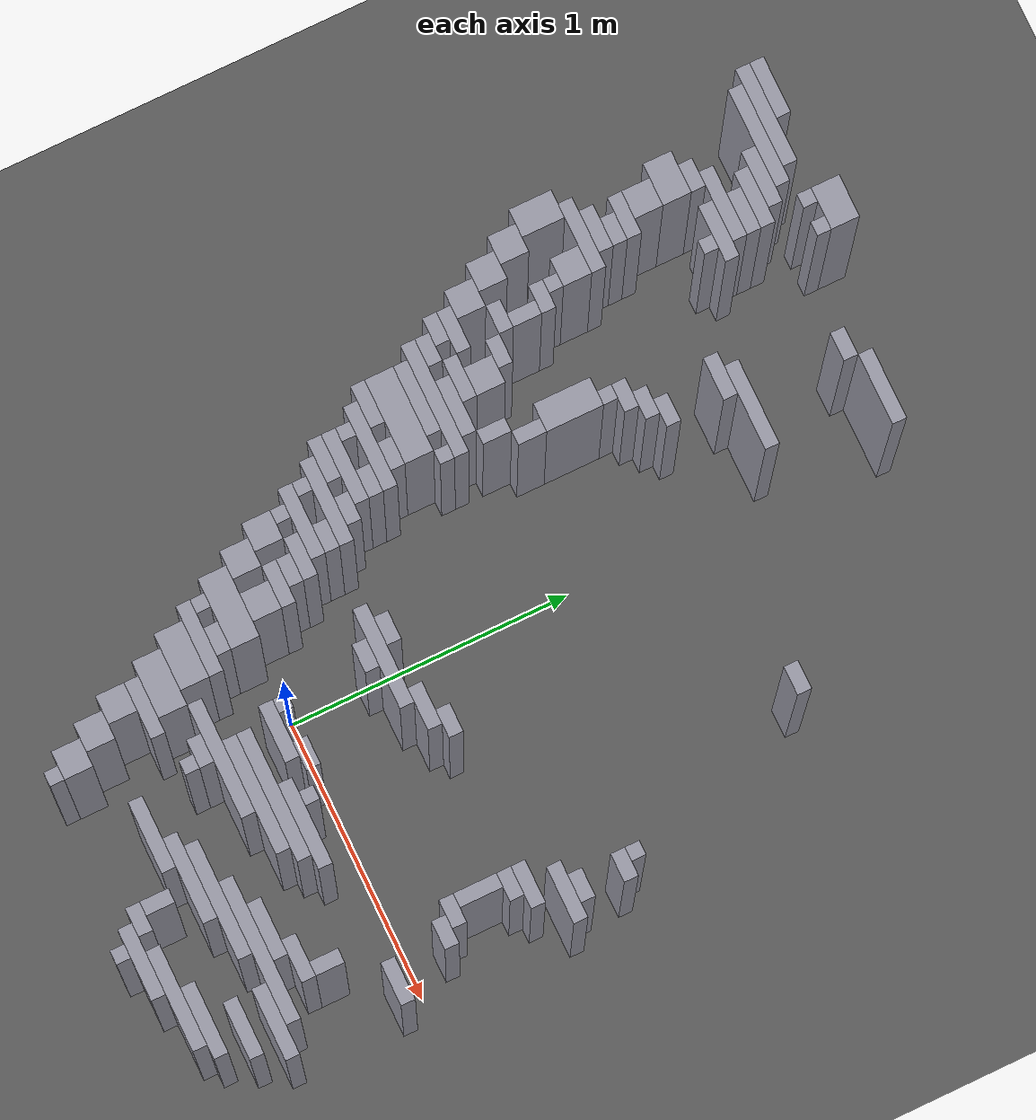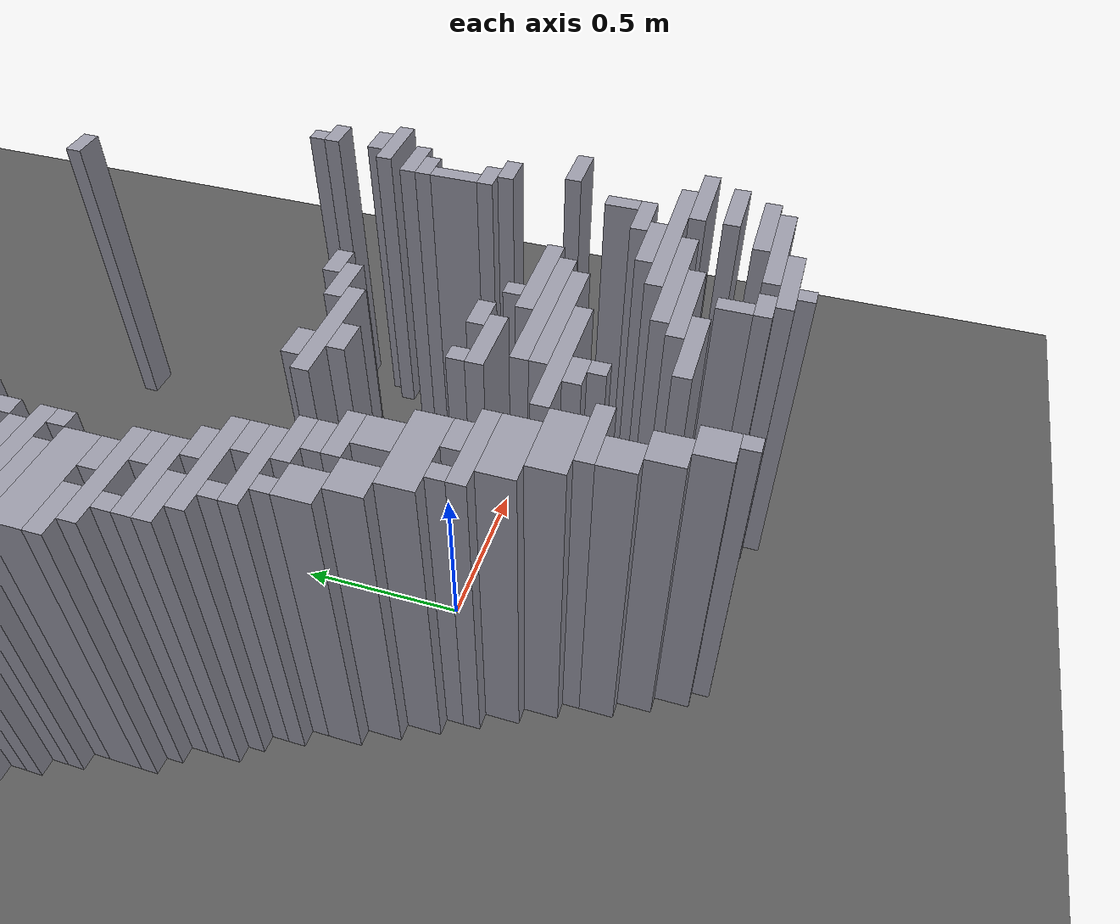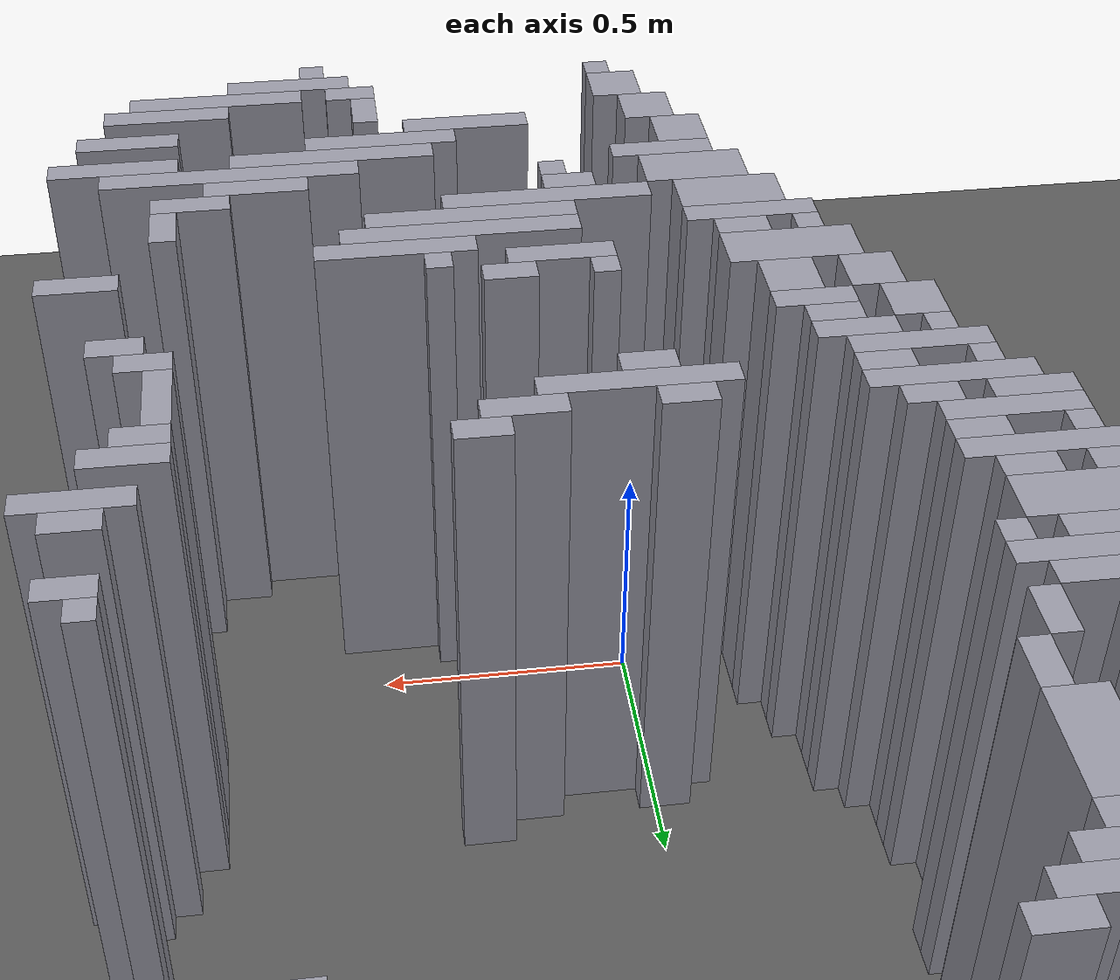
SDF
<sdf version="1.8">
 <world name="dimi">
  <model name="ground">
   <static>true</static>
   <link name="ground_link">
    <collision name="c"><geometry><plane><normal>0 0 1</normal><size>60 60</size></plane></geometry></collision>
    <visual name="v">
     <geometry><plane><normal>0 0 1</normal><size>60 60</size></plane></geometry>
     <material><ambient>0.3 0.3 0.3 1</ambient><diffuse>0.35 0.35 0.35 1</diffuse></material>
    </visual>
   </link>
  </model>
  <model name="walls">
   <static>true</static>
   <link name="wall_1074">
    <pose>-0.6420 2.2450 0.5000 0 0 0</pose>
    <collision name="c"><geometry><box><size>0.1500 0.1000 1.0000</size></box></geometry></collision>
    <visual name="v">
     <geometry><box><size>0.1500 0.1000 1.0000</size></box></geometry>
     <material><ambient>0.5 0.5 0.55 1</ambient><diffuse>0.6 0.6 0.65 1</diffuse></material>
    </visual>
   </link>
   <link name="wall_1080">
    <pose>-1.0670 2.2200 0.5000 0 0 0</pose>
    <collision name="c"><geometry><box><size>0.2000 0.0500 1.0000</size></box></geometry></collision>
    <visual name="v">
     <geometry><box><size>0.2000 0.0500 1.0000</size></box></geometry>
     <material><ambient>0.5 0.5 0.55 1</ambient><diffuse>0.6 0.6 0.65 1</diffuse></material>
    </visual>
   </link>
   <link name="wall_1085">
    <pose>-0.9920 2.1700 0.5000 0 0 0</pose>
    <collision name="c"><geometry><box><size>0.3500 0.0500 1.0000</size></box></geometry></collision>
    <visual name="v">
     <geometry><box><size>0.3500 0.0500 1.0000</size></box></geometry>
     <material><ambient>0.5 0.5 0.55 1</ambient><diffuse>0.6 0.6 0.65 1</diffuse></material>
    </visual>
   </link>
   <link name="wall_1086">
    <pose>-0.6920 2.1700 0.5000 0 0 0</pose>
    <collision name="c"><geometry><box><size>0.0500 0.0500 1.0000</size></box></geometry></collision>
    <visual name="v">
     <geometry><box><size>0.0500 0.0500 1.0000</size></box></geometry>
     <material><ambient>0.5 0.5 0.55 1</ambient><diffuse>0.6 0.6 0.65 1</diffuse></material>
    </visual>
   </link>
   <link name="wall_1087">
    <pose>-0.5920 2.1700 0.5000 0 0 0</pose>
    <collision name="c"><geometry><box><size>0.0500 0.0500 1.0000</size></box></geometry></collision>
    <visual name="v">
     <geometry><box><size>0.0500 0.0500 1.0000</size></box></geometry>
     <material><ambient>0.5 0.5 0.55 1</ambient><diffuse>0.6 0.6 0.65 1</diffuse></material>
    </visual>
   </link>
   <link name="wall_1092">
    <pose>-0.9420 2.1200 0.5000 0 0 0</pose>
    <collision name="c"><geometry><box><size>0.3500 0.0500 1.0000</size></box></geometry></collision>
    <visual name="v">
     <geometry><box><size>0.3500 0.0500 1.0000</size></box></geometry>
     <material><ambient>0.5 0.5 0.55 1</ambient><diffuse>0.6 0.6 0.65 1</diffuse></material>
    </visual>
   </link>
   <link name="wall_1093">
    <pose>-0.0420 2.1200 0.5000 0 0 0</pose>
    <collision name="c"><geometry><box><size>0.2500 0.0500 1.0000</size></box></geometry></collision>
    <visual name="v">
     <geometry><box><size>0.2500 0.0500 1.0000</size></box></geometry>
     <material><ambient>0.5 0.5 0.55 1</ambient><diffuse>0.6 0.6 0.65 1</diffuse></material>
    </visual>
   </link>
   <link name="wall_1097">
    <pose>-0.8170 2.0700 0.5000 0 0 0</pose>
    <collision name="c"><geometry><box><size>0.2000 0.0500 1.0000</size></box></geometry></collision>
    <visual name="v">
     <geometry><box><size>0.2000 0.0500 1.0000</size></box></geometry>
     <material><ambient>0.5 0.5 0.55 1</ambient><diffuse>0.6 0.6 0.65 1</diffuse></material>
    </visual>
   </link>
   <link name="wall_1098">
    <pose>-0.2170 2.0700 0.5000 0 0 0</pose>
    <collision name="c"><geometry><box><size>0.1000 0.0500 1.0000</size></box></geometry></collision>
    <visual name="v">
     <geometry><box><size>0.1000 0.0500 1.0000</size></box></geometry>
     <material><ambient>0.5 0.5 0.55 1</ambient><diffuse>0.6 0.6 0.65 1</diffuse></material>
    </visual>
   </link>
   <link name="wall_1102">
    <pose>-0.7670 2.0200 0.5000 0 0 0</pose>
    <collision name="c"><geometry><box><size>0.2000 0.0500 1.0000</size></box></geometry></collision>
    <visual name="v">
     <geometry><box><size>0.2000 0.0500 1.0000</size></box></geometry>
     <material><ambient>0.5 0.5 0.55 1</ambient><diffuse>0.6 0.6 0.65 1</diffuse></material>
    </visual>
   </link>
   <link name="wall_1105">
    <pose>-0.7420 1.9700 0.5000 0 0 0</pose>
    <collision name="c"><geometry><box><size>0.1500 0.0500 1.0000</size></box></geometry></collision>
    <visual name="v">
     <geometry><box><size>0.1500 0.0500 1.0000</size></box></geometry>
     <material><ambient>0.5 0.5 0.55 1</ambient><diffuse>0.6 0.6 0.65 1</diffuse></material>
    </visual>
   </link>
   <link name="wall_1110">
    <pose>-0.7920 1.9200 0.5000 0 0 0</pose>
    <collision name="c"><geometry><box><size>0.2500 0.0500 1.0000</size></box></geometry></collision>
    <visual name="v">
     <geometry><box><size>0.2500 0.0500 1.0000</size></box></geometry>
     <material><ambient>0.5 0.5 0.55 1</ambient><diffuse>0.6 0.6 0.65 1</diffuse></material>
    </visual>
   </link>
   <link name="wall_1113">
    <pose>-0.9170 1.8700 0.5000 0 0 0</pose>
    <collision name="c"><geometry><box><size>0.1000 0.0500 1.0000</size></box></geometry></collision>
    <visual name="v">
     <geometry><box><size>0.1000 0.0500 1.0000</size></box></geometry>
     <material><ambient>0.5 0.5 0.55 1</ambient><diffuse>0.6 0.6 0.65 1</diffuse></material>
    </visual>
   </link>
   <link name="wall_1114">
    <pose>-0.7170 1.8700 0.5000 0 0 0</pose>
    <collision name="c"><geometry><box><size>0.2000 0.0500 1.0000</size></box></geometry></collision>
    <visual name="v">
     <geometry><box><size>0.2000 0.0500 1.0000</size></box></geometry>
     <material><ambient>0.5 0.5 0.55 1</ambient><diffuse>0.6 0.6 0.65 1</diffuse></material>
    </visual>
   </link>
   <link name="wall_1119">
    <pose>-0.9420 1.7950 0.5000 0 0 0</pose>
    <collision name="c"><geometry><box><size>0.1500 0.1000 1.0000</size></box></geometry></collision>
    <visual name="v">
     <geometry><box><size>0.1500 0.1000 1.0000</size></box></geometry>
     <material><ambient>0.5 0.5 0.55 1</ambient><diffuse>0.6 0.6 0.65 1</diffuse></material>
    </visual>
   </link>
   <link name="wall_1120">
    <pose>-0.6920 1.8200 0.5000 0 0 0</pose>
    <collision name="c"><geometry><box><size>0.0500 0.0500 1.0000</size></box></geometry></collision>
    <visual name="v">
     <geometry><box><size>0.0500 0.0500 1.0000</size></box></geometry>
     <material><ambient>0.5 0.5 0.55 1</ambient><diffuse>0.6 0.6 0.65 1</diffuse></material>
    </visual>
   </link>
   <link name="wall_1127">
    <pose>-0.9170 1.6950 0.5000 0 0 0</pose>
    <collision name="c"><geometry><box><size>0.1000 0.1000 1.0000</size></box></geometry></collision>
    <visual name="v">
     <geometry><box><size>0.1000 0.1000 1.0000</size></box></geometry>
     <material><ambient>0.5 0.5 0.55 1</ambient><diffuse>0.6 0.6 0.65 1</diffuse></material>
    </visual>
   </link>
   <link name="wall_1128">
    <pose>-0.1670 1.7200 0.5000 0 0 0</pose>
    <collision name="c"><geometry><box><size>0.3000 0.0500 1.0000</size></box></geometry></collision>
    <visual name="v">
     <geometry><box><size>0.3000 0.0500 1.0000</size></box></geometry>
     <material><ambient>0.5 0.5 0.55 1</ambient><diffuse>0.6 0.6 0.65 1</diffuse></material>
    </visual>
   </link>
   <link name="wall_1134">
    <pose>-0.2920 1.6700 0.5000 0 0 0</pose>
    <collision name="c"><geometry><box><size>0.1500 0.0500 1.0000</size></box></geometry></collision>
    <visual name="v">
     <geometry><box><size>0.1500 0.0500 1.0000</size></box></geometry>
     <material><ambient>0.5 0.5 0.55 1</ambient><diffuse>0.6 0.6 0.65 1</diffuse></material>
    </visual>
   </link>
   <link name="wall_1138">
    <pose>-0.8920 1.6200 0.5000 0 0 0</pose>
    <collision name="c"><geometry><box><size>0.1500 0.0500 1.0000</size></box></geometry></collision>
    <visual name="v">
     <geometry><box><size>0.1500 0.0500 1.0000</size></box></geometry>
     <material><ambient>0.5 0.5 0.55 1</ambient><diffuse>0.6 0.6 0.65 1</diffuse></material>
    </visual>
   </link>
   <link name="wall_1143">
    <pose>-0.8670 1.5700 0.5000 0 0 0</pose>
    <collision name="c"><geometry><box><size>0.1000 0.0500 1.0000</size></box></geometry></collision>
    <visual name="v">
     <geometry><box><size>0.1000 0.0500 1.0000</size></box></geometry>
     <material><ambient>0.5 0.5 0.55 1</ambient><diffuse>0.6 0.6 0.65 1</diffuse></material>
    </visual>
   </link>
   <link name="wall_1146">
    <pose>-0.8920 1.5200 0.5000 0 0 0</pose>
    <collision name="c"><geometry><box><size>0.1500 0.0500 1.0000</size></box></geometry></collision>
    <visual name="v">
     <geometry><box><size>0.1500 0.0500 1.0000</size></box></geometry>
     <material><ambient>0.5 0.5 0.55 1</ambient><diffuse>0.6 0.6 0.65 1</diffuse></material>
    </visual>
   </link>
   <link name="wall_1150">
    <pose>-0.8920 1.4700 0.5000 0 0 0</pose>
    <collision name="c"><geometry><box><size>0.2500 0.0500 1.0000</size></box></geometry></collision>
    <visual name="v">
     <geometry><box><size>0.2500 0.0500 1.0000</size></box></geometry>
     <material><ambient>0.5 0.5 0.55 1</ambient><diffuse>0.6 0.6 0.65 1</diffuse></material>
    </visual>
   </link>
   <link name="wall_1151">
    <pose>-0.2670 1.4700 0.5000 0 0 0</pose>
    <collision name="c"><geometry><box><size>0.1000 0.0500 1.0000</size></box></geometry></collision>
    <visual name="v">
     <geometry><box><size>0.1000 0.0500 1.0000</size></box></geometry>
     <material><ambient>0.5 0.5 0.55 1</ambient><diffuse>0.6 0.6 0.65 1</diffuse></material>
    </visual>
   </link>
   <link name="wall_1152">
    <pose>0.6830 1.4700 0.5000 0 0 0</pose>
    <collision name="c"><geometry><box><size>0.1000 0.0500 1.0000</size></box></geometry></collision>
    <visual name="v">
     <geometry><box><size>0.1000 0.0500 1.0000</size></box></geometry>
     <material><ambient>0.5 0.5 0.55 1</ambient><diffuse>0.6 0.6 0.65 1</diffuse></material>
    </visual>
   </link>
   <link name="wall_1155">
    <pose>-1.0170 1.3700 0.5000 0 0 0</pose>
    <collision name="c"><geometry><box><size>0.1000 0.1500 1.0000</size></box></geometry></collision>
    <visual name="v">
     <geometry><box><size>0.1000 0.1500 1.0000</size></box></geometry>
     <material><ambient>0.5 0.5 0.55 1</ambient><diffuse>0.6 0.6 0.65 1</diffuse></material>
    </visual>
   </link>
   <link name="wall_1156">
    <pose>-0.8170 1.3950 0.5000 0 0 0</pose>
    <collision name="c"><geometry><box><size>0.1000 0.1000 1.0000</size></box></geometry></collision>
    <visual name="v">
     <geometry><box><size>0.1000 0.1000 1.0000</size></box></geometry>
     <material><ambient>0.5 0.5 0.55 1</ambient><diffuse>0.6 0.6 0.65 1</diffuse></material>
    </visual>
   </link>
   <link name="wall_1157">
    <pose>-0.3170 1.4200 0.5000 0 0 0</pose>
    <collision name="c"><geometry><box><size>0.1000 0.0500 1.0000</size></box></geometry></collision>
    <visual name="v">
     <geometry><box><size>0.1000 0.0500 1.0000</size></box></geometry>
     <material><ambient>0.5 0.5 0.55 1</ambient><diffuse>0.6 0.6 0.65 1</diffuse></material>
    </visual>
   </link>
   <link name="wall_1159">
    <pose>-0.3670 1.3700 0.5000 0 0 0</pose>
    <collision name="c"><geometry><box><size>0.1000 0.0500 1.0000</size></box></geometry></collision>
    <visual name="v">
     <geometry><box><size>0.1000 0.0500 1.0000</size></box></geometry>
     <material><ambient>0.5 0.5 0.55 1</ambient><diffuse>0.6 0.6 0.65 1</diffuse></material>
    </visual>
   </link>
   <link name="wall_1161">
    <pose>-0.7920 1.3200 0.5000 0 0 0</pose>
    <collision name="c"><geometry><box><size>0.0500 0.0500 1.0000</size></box></geometry></collision>
    <visual name="v">
     <geometry><box><size>0.0500 0.0500 1.0000</size></box></geometry>
     <material><ambient>0.5 0.5 0.55 1</ambient><diffuse>0.6 0.6 0.65 1</diffuse></material>
    </visual>
   </link>
   <link name="wall_1162">
    <pose>-0.3920 1.3200 0.5000 0 0 0</pose>
    <collision name="c"><geometry><box><size>0.0500 0.0500 1.0000</size></box></geometry></collision>
    <visual name="v">
     <geometry><box><size>0.0500 0.0500 1.0000</size></box></geometry>
     <material><ambient>0.5 0.5 0.55 1</ambient><diffuse>0.6 0.6 0.65 1</diffuse></material>
    </visual>
   </link>
   <link name="wall_1166">
    <pose>-0.9670 1.2450 0.5000 0 0 0</pose>
    <collision name="c"><geometry><box><size>0.1000 0.1000 1.0000</size></box></geometry></collision>
    <visual name="v">
     <geometry><box><size>0.1000 0.1000 1.0000</size></box></geometry>
     <material><ambient>0.5 0.5 0.55 1</ambient><diffuse>0.6 0.6 0.65 1</diffuse></material>
    </visual>
   </link>
   <link name="wall_1167">
    <pose>-0.7670 1.2700 0.5000 0 0 0</pose>
    <collision name="c"><geometry><box><size>0.1000 0.0500 1.0000</size></box></geometry></collision>
    <visual name="v">
     <geometry><box><size>0.1000 0.0500 1.0000</size></box></geometry>
     <material><ambient>0.5 0.5 0.55 1</ambient><diffuse>0.6 0.6 0.65 1</diffuse></material>
    </visual>
   </link>
   <link name="wall_1168">
    <pose>-0.4170 1.1950 0.5000 0 0 0</pose>
    <collision name="c"><geometry><box><size>0.1000 0.2000 1.0000</size></box></geometry></collision>
    <visual name="v">
     <geometry><box><size>0.1000 0.2000 1.0000</size></box></geometry>
     <material><ambient>0.5 0.5 0.55 1</ambient><diffuse>0.6 0.6 0.65 1</diffuse></material>
    </visual>
   </link>
   <link name="wall_1171">
    <pose>-0.7420 1.1950 0.5000 0 0 0</pose>
    <collision name="c"><geometry><box><size>0.0500 0.1000 1.0000</size></box></geometry></collision>
    <visual name="v">
     <geometry><box><size>0.0500 0.1000 1.0000</size></box></geometry>
     <material><ambient>0.5 0.5 0.55 1</ambient><diffuse>0.6 0.6 0.65 1</diffuse></material>
    </visual>
   </link>
   <link name="wall_1174">
    <pose>-0.9170 1.1450 0.5000 0 0 0</pose>
    <collision name="c"><geometry><box><size>0.1000 0.1000 1.0000</size></box></geometry></collision>
    <visual name="v">
     <geometry><box><size>0.1000 0.1000 1.0000</size></box></geometry>
     <material><ambient>0.5 0.5 0.55 1</ambient><diffuse>0.6 0.6 0.65 1</diffuse></material>
    </visual>
   </link>
   <link name="wall_1176">
    <pose>-0.7670 1.1200 0.5000 0 0 0</pose>
    <collision name="c"><geometry><box><size>0.1000 0.0500 1.0000</size></box></geometry></collision>
    <visual name="v">
     <geometry><box><size>0.1000 0.0500 1.0000</size></box></geometry>
     <material><ambient>0.5 0.5 0.55 1</ambient><diffuse>0.6 0.6 0.65 1</diffuse></material>
    </visual>
   </link>
   <link name="wall_1179">
    <pose>-0.8670 1.0450 0.5000 0 0 0</pose>
    <collision name="c"><geometry><box><size>0.1000 0.1000 1.0000</size></box></geometry></collision>
    <visual name="v">
     <geometry><box><size>0.1000 0.1000 1.0000</size></box></geometry>
     <material><ambient>0.5 0.5 0.55 1</ambient><diffuse>0.6 0.6 0.65 1</diffuse></material>
    </visual>
   </link>
   <link name="wall_1180">
    <pose>-0.6670 1.0700 0.5000 0 0 0</pose>
    <collision name="c"><geometry><box><size>0.1000 0.0500 1.0000</size></box></geometry></collision>
    <visual name="v">
     <geometry><box><size>0.1000 0.0500 1.0000</size></box></geometry>
     <material><ambient>0.5 0.5 0.55 1</ambient><diffuse>0.6 0.6 0.65 1</diffuse></material>
    </visual>
   </link>
   <link name="wall_1181">
    <pose>-0.3920 1.0450 0.5000 0 0 0</pose>
    <collision name="c"><geometry><box><size>0.0500 0.1000 1.0000</size></box></geometry></collision>
    <visual name="v">
     <geometry><box><size>0.0500 0.1000 1.0000</size></box></geometry>
     <material><ambient>0.5 0.5 0.55 1</ambient><diffuse>0.6 0.6 0.65 1</diffuse></material>
    </visual>
   </link>
   <link name="wall_1185">
    <pose>-0.6170 0.9950 0.5000 0 0 0</pose>
    <collision name="c"><geometry><box><size>0.1000 0.1000 1.0000</size></box></geometry></collision>
    <visual name="v">
     <geometry><box><size>0.1000 0.1000 1.0000</size></box></geometry>
     <material><ambient>0.5 0.5 0.55 1</ambient><diffuse>0.6 0.6 0.65 1</diffuse></material>
    </visual>
   </link>
   <link name="wall_1188">
    <pose>-0.7920 0.9700 0.5000 0 0 0</pose>
    <collision name="c"><geometry><box><size>0.1500 0.0500 1.0000</size></box></geometry></collision>
    <visual name="v">
     <geometry><box><size>0.1500 0.0500 1.0000</size></box></geometry>
     <material><ambient>0.5 0.5 0.55 1</ambient><diffuse>0.6 0.6 0.65 1</diffuse></material>
    </visual>
   </link>
   <link name="wall_1189">
    <pose>-0.4420 0.9450 0.5000 0 0 0</pose>
    <collision name="c"><geometry><box><size>0.0500 0.1000 1.0000</size></box></geometry></collision>
    <visual name="v">
     <geometry><box><size>0.0500 0.1000 1.0000</size></box></geometry>
     <material><ambient>0.5 0.5 0.55 1</ambient><diffuse>0.6 0.6 0.65 1</diffuse></material>
    </visual>
   </link>
   <link name="wall_1193">
    <pose>-0.8170 0.9200 0.5000 0 0 0</pose>
    <collision name="c"><geometry><box><size>0.1000 0.0500 1.0000</size></box></geometry></collision>
    <visual name="v">
     <geometry><box><size>0.1000 0.0500 1.0000</size></box></geometry>
     <material><ambient>0.5 0.5 0.55 1</ambient><diffuse>0.6 0.6 0.65 1</diffuse></material>
    </visual>
   </link>
   <link name="wall_1194">
    <pose>-0.6420 0.9200 0.5000 0 0 0</pose>
    <collision name="c"><geometry><box><size>0.1500 0.0500 1.0000</size></box></geometry></collision>
    <visual name="v">
     <geometry><box><size>0.1500 0.0500 1.0000</size></box></geometry>
     <material><ambient>0.5 0.5 0.55 1</ambient><diffuse>0.6 0.6 0.65 1</diffuse></material>
    </visual>
   </link>
   <link name="wall_1198">
    <pose>-0.7670 0.8700 0.5000 0 0 0</pose>
    <collision name="c"><geometry><box><size>0.1000 0.0500 1.0000</size></box></geometry></collision>
    <visual name="v">
     <geometry><box><size>0.1000 0.0500 1.0000</size></box></geometry>
     <material><ambient>0.5 0.5 0.55 1</ambient><diffuse>0.6 0.6 0.65 1</diffuse></material>
    </visual>
   </link>
   <link name="wall_1199">
    <pose>-0.5670 0.8700 0.5000 0 0 0</pose>
    <collision name="c"><geometry><box><size>0.2000 0.0500 1.0000</size></box></geometry></collision>
    <visual name="v">
     <geometry><box><size>0.2000 0.0500 1.0000</size></box></geometry>
     <material><ambient>0.5 0.5 0.55 1</ambient><diffuse>0.6 0.6 0.65 1</diffuse></material>
    </visual>
   </link>
   <link name="wall_1203">
    <pose>-0.6170 0.8200 0.5000 0 0 0</pose>
    <collision name="c"><geometry><box><size>0.4000 0.0500 1.0000</size></box></geometry></collision>
    <visual name="v">
     <geometry><box><size>0.4000 0.0500 1.0000</size></box></geometry>
     <material><ambient>0.5 0.5 0.55 1</ambient><diffuse>0.6 0.6 0.65 1</diffuse></material>
    </visual>
   </link>
   <link name="wall_1207">
    <pose>-0.6420 0.7700 0.5000 0 0 0</pose>
    <collision name="c"><geometry><box><size>0.2500 0.0500 1.0000</size></box></geometry></collision>
    <visual name="v">
     <geometry><box><size>0.2500 0.0500 1.0000</size></box></geometry>
     <material><ambient>0.5 0.5 0.55 1</ambient><diffuse>0.6 0.6 0.65 1</diffuse></material>
    </visual>
   </link>
   <link name="wall_1208">
    <pose>-0.4420 0.7700 0.5000 0 0 0</pose>
    <collision name="c"><geometry><box><size>0.0500 0.0500 1.0000</size></box></geometry></collision>
    <visual name="v">
     <geometry><box><size>0.0500 0.0500 1.0000</size></box></geometry>
     <material><ambient>0.5 0.5 0.55 1</ambient><diffuse>0.6 0.6 0.65 1</diffuse></material>
    </visual>
   </link>
   <link name="wall_1209">
    <pose>0.9580 0.7700 0.5000 0 0 0</pose>
    <collision name="c"><geometry><box><size>0.0500 0.0500 1.0000</size></box></geometry></collision>
    <visual name="v">
     <geometry><box><size>0.0500 0.0500 1.0000</size></box></geometry>
     <material><ambient>0.5 0.5 0.55 1</ambient><diffuse>0.6 0.6 0.65 1</diffuse></material>
    </visual>
   </link>
   <link name="wall_1213">
    <pose>-0.6170 0.6950 0.5000 0 0 0</pose>
    <collision name="c"><geometry><box><size>0.3000 0.1000 1.0000</size></box></geometry></collision>
    <visual name="v">
     <geometry><box><size>0.3000 0.1000 1.0000</size></box></geometry>
     <material><ambient>0.5 0.5 0.55 1</ambient><diffuse>0.6 0.6 0.65 1</diffuse></material>
    </visual>
   </link>
   <link name="wall_1214">
    <pose>0.9830 0.7200 0.5000 0 0 0</pose>
    <collision name="c"><geometry><box><size>0.1000 0.0500 1.0000</size></box></geometry></collision>
    <visual name="v">
     <geometry><box><size>0.1000 0.0500 1.0000</size></box></geometry>
     <material><ambient>0.5 0.5 0.55 1</ambient><diffuse>0.6 0.6 0.65 1</diffuse></material>
    </visual>
   </link>
   <link name="wall_1217">
    <pose>-0.6920 0.6200 0.5000 0 0 0</pose>
    <collision name="c"><geometry><box><size>0.1500 0.0500 1.0000</size></box></geometry></collision>
    <visual name="v">
     <geometry><box><size>0.1500 0.0500 1.0000</size></box></geometry>
     <material><ambient>0.5 0.5 0.55 1</ambient><diffuse>0.6 0.6 0.65 1</diffuse></material>
    </visual>
   </link>
   <link name="wall_1218">
    <pose>-0.5170 0.6200 0.5000 0 0 0</pose>
    <collision name="c"><geometry><box><size>0.1000 0.0500 1.0000</size></box></geometry></collision>
    <visual name="v">
     <geometry><box><size>0.1000 0.0500 1.0000</size></box></geometry>
     <material><ambient>0.5 0.5 0.55 1</ambient><diffuse>0.6 0.6 0.65 1</diffuse></material>
    </visual>
   </link>
   <link name="wall_1221">
    <pose>-0.5670 0.5700 0.5000 0 0 0</pose>
    <collision name="c"><geometry><box><size>0.3000 0.0500 1.0000</size></box></geometry></collision>
    <visual name="v">
     <geometry><box><size>0.3000 0.0500 1.0000</size></box></geometry>
     <material><ambient>0.5 0.5 0.55 1</ambient><diffuse>0.6 0.6 0.65 1</diffuse></material>
    </visual>
   </link>
   <link name="wall_1222">
    <pose>0.9830 0.5700 0.5000 0 0 0</pose>
    <collision name="c"><geometry><box><size>0.1000 0.0500 1.0000</size></box></geometry></collision>
    <visual name="v">
     <geometry><box><size>0.1000 0.0500 1.0000</size></box></geometry>
     <material><ambient>0.5 0.5 0.55 1</ambient><diffuse>0.6 0.6 0.65 1</diffuse></material>
    </visual>
   </link>
   <link name="wall_1225">
    <pose>-0.6420 0.5200 0.5000 0 0 0</pose>
    <collision name="c"><geometry><box><size>0.0500 0.0500 1.0000</size></box></geometry></collision>
    <visual name="v">
     <geometry><box><size>0.0500 0.0500 1.0000</size></box></geometry>
     <material><ambient>0.5 0.5 0.55 1</ambient><diffuse>0.6 0.6 0.65 1</diffuse></material>
    </visual>
   </link>
   <link name="wall_1226">
    <pose>-0.4670 0.5200 0.5000 0 0 0</pose>
    <collision name="c"><geometry><box><size>0.1000 0.0500 1.0000</size></box></geometry></collision>
    <visual name="v">
     <geometry><box><size>0.1000 0.0500 1.0000</size></box></geometry>
     <material><ambient>0.5 0.5 0.55 1</ambient><diffuse>0.6 0.6 0.65 1</diffuse></material>
    </visual>
   </link>
   <link name="wall_1227">
    <pose>0.9830 0.5200 0.5000 0 0 0</pose>
    <collision name="c"><geometry><box><size>0.2000 0.0500 1.0000</size></box></geometry></collision>
    <visual name="v">
     <geometry><box><size>0.2000 0.0500 1.0000</size></box></geometry>
     <material><ambient>0.5 0.5 0.55 1</ambient><diffuse>0.6 0.6 0.65 1</diffuse></material>
    </visual>
   </link>
   <link name="wall_1231">
    <pose>-0.5420 0.4700 0.5000 0 0 0</pose>
    <collision name="c"><geometry><box><size>0.2500 0.0500 1.0000</size></box></geometry></collision>
    <visual name="v">
     <geometry><box><size>0.2500 0.0500 1.0000</size></box></geometry>
     <material><ambient>0.5 0.5 0.55 1</ambient><diffuse>0.6 0.6 0.65 1</diffuse></material>
    </visual>
   </link>
   <link name="wall_1235">
    <pose>-0.5920 0.4200 0.5000 0 0 0</pose>
    <collision name="c"><geometry><box><size>0.1500 0.0500 1.0000</size></box></geometry></collision>
    <visual name="v">
     <geometry><box><size>0.1500 0.0500 1.0000</size></box></geometry>
     <material><ambient>0.5 0.5 0.55 1</ambient><diffuse>0.6 0.6 0.65 1</diffuse></material>
    </visual>
   </link>
   <link name="wall_1236">
    <pose>-0.4170 0.4200 0.5000 0 0 0</pose>
    <collision name="c"><geometry><box><size>0.1000 0.0500 1.0000</size></box></geometry></collision>
    <visual name="v">
     <geometry><box><size>0.1000 0.0500 1.0000</size></box></geometry>
     <material><ambient>0.5 0.5 0.55 1</ambient><diffuse>0.6 0.6 0.65 1</diffuse></material>
    </visual>
   </link>
   <link name="wall_1237">
    <pose>0.3330 0.4200 0.5000 0 0 0</pose>
    <collision name="c"><geometry><box><size>0.1000 0.0500 1.0000</size></box></geometry></collision>
    <visual name="v">
     <geometry><box><size>0.1000 0.0500 1.0000</size></box></geometry>
     <material><ambient>0.5 0.5 0.55 1</ambient><diffuse>0.6 0.6 0.65 1</diffuse></material>
    </visual>
   </link>
   <link name="wall_1238">
    <pose>0.9080 0.4200 0.5000 0 0 0</pose>
    <collision name="c"><geometry><box><size>0.1500 0.0500 1.0000</size></box></geometry></collision>
    <visual name="v">
     <geometry><box><size>0.1500 0.0500 1.0000</size></box></geometry>
     <material><ambient>0.5 0.5 0.55 1</ambient><diffuse>0.6 0.6 0.65 1</diffuse></material>
    </visual>
   </link>
   <link name="wall_1244">
    <pose>-0.4670 0.3700 0.5000 0 0 0</pose>
    <collision name="c"><geometry><box><size>0.3000 0.0500 1.0000</size></box></geometry></collision>
    <visual name="v">
     <geometry><box><size>0.3000 0.0500 1.0000</size></box></geometry>
     <material><ambient>0.5 0.5 0.55 1</ambient><diffuse>0.6 0.6 0.65 1</diffuse></material>
    </visual>
   </link>
   <link name="wall_1245">
    <pose>-0.0170 0.3700 0.5000 0 0 0</pose>
    <collision name="c"><geometry><box><size>0.1000 0.0500 1.0000</size></box></geometry></collision>
    <visual name="v">
     <geometry><box><size>0.1000 0.0500 1.0000</size></box></geometry>
     <material><ambient>0.5 0.5 0.55 1</ambient><diffuse>0.6 0.6 0.65 1</diffuse></material>
    </visual>
   </link>
   <link name="wall_1246">
    <pose>0.2580 0.3700 0.5000 0 0 0</pose>
    <collision name="c"><geometry><box><size>0.1500 0.0500 1.0000</size></box></geometry></collision>
    <visual name="v">
     <geometry><box><size>0.1500 0.0500 1.0000</size></box></geometry>
     <material><ambient>0.5 0.5 0.55 1</ambient><diffuse>0.6 0.6 0.65 1</diffuse></material>
    </visual>
   </link>
   <link name="wall_1247">
    <pose>0.8830 0.3700 0.5000 0 0 0</pose>
    <collision name="c"><geometry><box><size>0.1000 0.0500 1.0000</size></box></geometry></collision>
    <visual name="v">
     <geometry><box><size>0.1000 0.0500 1.0000</size></box></geometry>
     <material><ambient>0.5 0.5 0.55 1</ambient><diffuse>0.6 0.6 0.65 1</diffuse></material>
    </visual>
   </link>
   <link name="wall_1251">
    <pose>-0.5420 0.3200 0.5000 0 0 0</pose>
    <collision name="c"><geometry><box><size>0.0500 0.0500 1.0000</size></box></geometry></collision>
    <visual name="v">
     <geometry><box><size>0.0500 0.0500 1.0000</size></box></geometry>
     <material><ambient>0.5 0.5 0.55 1</ambient><diffuse>0.6 0.6 0.65 1</diffuse></material>
    </visual>
   </link>
   <link name="wall_1252">
    <pose>-0.3670 0.3200 0.5000 0 0 0</pose>
    <collision name="c"><geometry><box><size>0.1000 0.0500 1.0000</size></box></geometry></collision>
    <visual name="v">
     <geometry><box><size>0.1000 0.0500 1.0000</size></box></geometry>
     <material><ambient>0.5 0.5 0.55 1</ambient><diffuse>0.6 0.6 0.65 1</diffuse></material>
    </visual>
   </link>
   <link name="wall_1253">
    <pose>0.0580 0.3200 0.5000 0 0 0</pose>
    <collision name="c"><geometry><box><size>0.3500 0.0500 1.0000</size></box></geometry></collision>
    <visual name="v">
     <geometry><box><size>0.3500 0.0500 1.0000</size></box></geometry>
     <material><ambient>0.5 0.5 0.55 1</ambient><diffuse>0.6 0.6 0.65 1</diffuse></material>
    </visual>
   </link>
   <link name="wall_1254">
    <pose>0.8580 0.2700 0.5000 0 0 0</pose>
    <collision name="c"><geometry><box><size>0.0500 0.1500 1.0000</size></box></geometry></collision>
    <visual name="v">
     <geometry><box><size>0.0500 0.1500 1.0000</size></box></geometry>
     <material><ambient>0.5 0.5 0.55 1</ambient><diffuse>0.6 0.6 0.65 1</diffuse></material>
    </visual>
   </link>
   <link name="wall_1258">
    <pose>-0.4420 0.2700 0.5000 0 0 0</pose>
    <collision name="c"><geometry><box><size>0.2500 0.0500 1.0000</size></box></geometry></collision>
    <visual name="v">
     <geometry><box><size>0.2500 0.0500 1.0000</size></box></geometry>
     <material><ambient>0.5 0.5 0.55 1</ambient><diffuse>0.6 0.6 0.65 1</diffuse></material>
    </visual>
   </link>
   <link name="wall_1259">
    <pose>0.0330 0.2700 0.5000 0 0 0</pose>
    <collision name="c"><geometry><box><size>0.1000 0.0500 1.0000</size></box></geometry></collision>
    <visual name="v">
     <geometry><box><size>0.1000 0.0500 1.0000</size></box></geometry>
     <material><ambient>0.5 0.5 0.55 1</ambient><diffuse>0.6 0.6 0.65 1</diffuse></material>
    </visual>
   </link>
   <link name="wall_1262">
    <pose>-0.4920 0.2200 0.5000 0 0 0</pose>
    <collision name="c"><geometry><box><size>0.0500 0.0500 1.0000</size></box></geometry></collision>
    <visual name="v">
     <geometry><box><size>0.0500 0.0500 1.0000</size></box></geometry>
     <material><ambient>0.5 0.5 0.55 1</ambient><diffuse>0.6 0.6 0.65 1</diffuse></material>
    </visual>
   </link>
   <link name="wall_1263">
    <pose>-0.3420 0.2200 0.5000 0 0 0</pose>
    <collision name="c"><geometry><box><size>0.1500 0.0500 1.0000</size></box></geometry></collision>
    <visual name="v">
     <geometry><box><size>0.1500 0.0500 1.0000</size></box></geometry>
     <material><ambient>0.5 0.5 0.55 1</ambient><diffuse>0.6 0.6 0.65 1</diffuse></material>
    </visual>
   </link>
   <link name="wall_1266">
    <pose>-0.4670 0.1450 0.5000 0 0 0</pose>
    <collision name="c"><geometry><box><size>0.1000 0.1000 1.0000</size></box></geometry></collision>
    <visual name="v">
     <geometry><box><size>0.1000 0.1000 1.0000</size></box></geometry>
     <material><ambient>0.5 0.5 0.55 1</ambient><diffuse>0.6 0.6 0.65 1</diffuse></material>
    </visual>
   </link>
   <link name="wall_1267">
    <pose>-0.3170 0.1700 0.5000 0 0 0</pose>
    <collision name="c"><geometry><box><size>0.1000 0.0500 1.0000</size></box></geometry></collision>
    <visual name="v">
     <geometry><box><size>0.1000 0.0500 1.0000</size></box></geometry>
     <material><ambient>0.5 0.5 0.55 1</ambient><diffuse>0.6 0.6 0.65 1</diffuse></material>
    </visual>
   </link>
   <link name="wall_1268">
    <pose>0.8830 0.1700 0.5000 0 0 0</pose>
    <collision name="c"><geometry><box><size>0.1000 0.0500 1.0000</size></box></geometry></collision>
    <visual name="v">
     <geometry><box><size>0.1000 0.0500 1.0000</size></box></geometry>
     <material><ambient>0.5 0.5 0.55 1</ambient><diffuse>0.6 0.6 0.65 1</diffuse></material>
    </visual>
   </link>
   <link name="wall_1272">
    <pose>-0.2920 0.1200 0.5000 0 0 0</pose>
    <collision name="c"><geometry><box><size>0.1500 0.0500 1.0000</size></box></geometry></collision>
    <visual name="v">
     <geometry><box><size>0.1500 0.0500 1.0000</size></box></geometry>
     <material><ambient>0.5 0.5 0.55 1</ambient><diffuse>0.6 0.6 0.65 1</diffuse></material>
    </visual>
   </link>
   <link name="wall_1273">
    <pose>0.9330 0.1200 0.5000 0 0 0</pose>
    <collision name="c"><geometry><box><size>0.1000 0.0500 1.0000</size></box></geometry></collision>
    <visual name="v">
     <geometry><box><size>0.1000 0.0500 1.0000</size></box></geometry>
     <material><ambient>0.5 0.5 0.55 1</ambient><diffuse>0.6 0.6 0.65 1</diffuse></material>
    </visual>
   </link>
   <link name="wall_1277">
    <pose>-0.4170 0.0450 0.5000 0 0 0</pose>
    <collision name="c"><geometry><box><size>0.1000 0.1000 1.0000</size></box></geometry></collision>
    <visual name="v">
     <geometry><box><size>0.1000 0.1000 1.0000</size></box></geometry>
     <material><ambient>0.5 0.5 0.55 1</ambient><diffuse>0.6 0.6 0.65 1</diffuse></material>
    </visual>
   </link>
   <link name="wall_1278">
    <pose>-0.2670 0.0450 0.5000 0 0 0</pose>
    <collision name="c"><geometry><box><size>0.1000 0.1000 1.0000</size></box></geometry></collision>
    <visual name="v">
     <geometry><box><size>0.1000 0.1000 1.0000</size></box></geometry>
     <material><ambient>0.5 0.5 0.55 1</ambient><diffuse>0.6 0.6 0.65 1</diffuse></material>
    </visual>
   </link>
   <link name="wall_1284">
    <pose>-0.2920 -0.0550 0.5000 0 0 0</pose>
    <collision name="c"><geometry><box><size>0.2500 0.1000 1.0000</size></box></geometry></collision>
    <visual name="v">
     <geometry><box><size>0.2500 0.1000 1.0000</size></box></geometry>
     <material><ambient>0.5 0.5 0.55 1</ambient><diffuse>0.6 0.6 0.65 1</diffuse></material>
    </visual>
   </link>
   <link name="wall_1285">
    <pose>0.0580 -0.0300 0.5000 0 0 0</pose>
    <collision name="c"><geometry><box><size>0.0500 0.0500 1.0000</size></box></geometry></collision>
    <visual name="v">
     <geometry><box><size>0.0500 0.0500 1.0000</size></box></geometry>
     <material><ambient>0.5 0.5 0.55 1</ambient><diffuse>0.6 0.6 0.65 1</diffuse></material>
    </visual>
   </link>
   <link name="wall_1286">
    <pose>0.2330 -0.0300 0.5000 0 0 0</pose>
    <collision name="c"><geometry><box><size>0.1000 0.0500 1.0000</size></box></geometry></collision>
    <visual name="v">
     <geometry><box><size>0.1000 0.0500 1.0000</size></box></geometry>
     <material><ambient>0.5 0.5 0.55 1</ambient><diffuse>0.6 0.6 0.65 1</diffuse></material>
    </visual>
   </link>
   <link name="wall_1289">
    <pose>0.1330 -0.0800 0.5000 0 0 0</pose>
    <collision name="c"><geometry><box><size>0.2000 0.0500 1.0000</size></box></geometry></collision>
    <visual name="v">
     <geometry><box><size>0.2000 0.0500 1.0000</size></box></geometry>
     <material><ambient>0.5 0.5 0.55 1</ambient><diffuse>0.6 0.6 0.65 1</diffuse></material>
    </visual>
   </link>
   <link name="wall_1290">
    <pose>0.3580 -0.0800 0.5000 0 0 0</pose>
    <collision name="c"><geometry><box><size>0.0500 0.0500 1.0000</size></box></geometry></collision>
    <visual name="v">
     <geometry><box><size>0.0500 0.0500 1.0000</size></box></geometry>
     <material><ambient>0.5 0.5 0.55 1</ambient><diffuse>0.6 0.6 0.65 1</diffuse></material>
    </visual>
   </link>
   <link name="wall_1291">
    <pose>1.0080 -0.0800 0.5000 0 0 0</pose>
    <collision name="c"><geometry><box><size>0.1500 0.0500 1.0000</size></box></geometry></collision>
    <visual name="v">
     <geometry><box><size>0.1500 0.0500 1.0000</size></box></geometry>
     <material><ambient>0.5 0.5 0.55 1</ambient><diffuse>0.6 0.6 0.65 1</diffuse></material>
    </visual>
   </link>
   <link name="wall_1294">
    <pose>-0.3420 -0.1300 0.5000 0 0 0</pose>
    <collision name="c"><geometry><box><size>0.0500 0.0500 1.0000</size></box></geometry></collision>
    <visual name="v">
     <geometry><box><size>0.0500 0.0500 1.0000</size></box></geometry>
     <material><ambient>0.5 0.5 0.55 1</ambient><diffuse>0.6 0.6 0.65 1</diffuse></material>
    </visual>
   </link>
   <link name="wall_1295">
    <pose>-0.2170 -0.1300 0.5000 0 0 0</pose>
    <collision name="c"><geometry><box><size>0.1000 0.0500 1.0000</size></box></geometry></collision>
    <visual name="v">
     <geometry><box><size>0.1000 0.0500 1.0000</size></box></geometry>
     <material><ambient>0.5 0.5 0.55 1</ambient><diffuse>0.6 0.6 0.65 1</diffuse></material>
    </visual>
   </link>
   <link name="wall_1296">
    <pose>0.4330 -0.1300 0.5000 0 0 0</pose>
    <collision name="c"><geometry><box><size>0.3000 0.0500 1.0000</size></box></geometry></collision>
    <visual name="v">
     <geometry><box><size>0.3000 0.0500 1.0000</size></box></geometry>
     <material><ambient>0.5 0.5 0.55 1</ambient><diffuse>0.6 0.6 0.65 1</diffuse></material>
    </visual>
   </link>
   <link name="wall_1299">
    <pose>-0.2420 -0.1800 0.5000 0 0 0</pose>
    <collision name="c"><geometry><box><size>0.2500 0.0500 1.0000</size></box></geometry></collision>
    <visual name="v">
     <geometry><box><size>0.2500 0.0500 1.0000</size></box></geometry>
     <material><ambient>0.5 0.5 0.55 1</ambient><diffuse>0.6 0.6 0.65 1</diffuse></material>
    </visual>
   </link>
   <link name="wall_1300">
    <pose>0.3080 -0.1800 0.5000 0 0 0</pose>
    <collision name="c"><geometry><box><size>0.4500 0.0500 1.0000</size></box></geometry></collision>
    <visual name="v">
     <geometry><box><size>0.4500 0.0500 1.0000</size></box></geometry>
     <material><ambient>0.5 0.5 0.55 1</ambient><diffuse>0.6 0.6 0.65 1</diffuse></material>
    </visual>
   </link>
   <link name="wall_1302">
    <pose>-0.2170 -0.2550 0.5000 0 0 0</pose>
    <collision name="c"><geometry><box><size>0.2000 0.1000 1.0000</size></box></geometry></collision>
    <visual name="v">
     <geometry><box><size>0.2000 0.1000 1.0000</size></box></geometry>
     <material><ambient>0.5 0.5 0.55 1</ambient><diffuse>0.6 0.6 0.65 1</diffuse></material>
    </visual>
   </link>
   <link name="wall_1303">
    <pose>0.2830 -0.2300 0.5000 0 0 0</pose>
    <collision name="c"><geometry><box><size>0.4000 0.0500 1.0000</size></box></geometry></collision>
    <visual name="v">
     <geometry><box><size>0.4000 0.0500 1.0000</size></box></geometry>
     <material><ambient>0.5 0.5 0.55 1</ambient><diffuse>0.6 0.6 0.65 1</diffuse></material>
    </visual>
   </link>
   <link name="wall_1304">
    <pose>0.8580 -0.2550 0.5000 0 0 0</pose>
    <collision name="c"><geometry><box><size>0.0500 0.1000 1.0000</size></box></geometry></collision>
    <visual name="v">
     <geometry><box><size>0.0500 0.1000 1.0000</size></box></geometry>
     <material><ambient>0.5 0.5 0.55 1</ambient><diffuse>0.6 0.6 0.65 1</diffuse></material>
    </visual>
   </link>
   <link name="wall_1306">
    <pose>0.1330 -0.2800 0.5000 0 0 0</pose>
    <collision name="c"><geometry><box><size>0.4000 0.0500 1.0000</size></box></geometry></collision>
    <visual name="v">
     <geometry><box><size>0.4000 0.0500 1.0000</size></box></geometry>
     <material><ambient>0.5 0.5 0.55 1</ambient><diffuse>0.6 0.6 0.65 1</diffuse></material>
    </visual>
   </link>
   <link name="wall_1308">
    <pose>-0.1670 -0.3550 0.5000 0 0 0</pose>
    <collision name="c"><geometry><box><size>0.2000 0.1000 1.0000</size></box></geometry></collision>
    <visual name="v">
     <geometry><box><size>0.2000 0.1000 1.0000</size></box></geometry>
     <material><ambient>0.5 0.5 0.55 1</ambient><diffuse>0.6 0.6 0.65 1</diffuse></material>
    </visual>
   </link>
   <link name="wall_1309">
    <pose>0.0830 -0.3300 0.5000 0 0 0</pose>
    <collision name="c"><geometry><box><size>0.1000 0.0500 1.0000</size></box></geometry></collision>
    <visual name="v">
     <geometry><box><size>0.1000 0.0500 1.0000</size></box></geometry>
     <material><ambient>0.5 0.5 0.55 1</ambient><diffuse>0.6 0.6 0.65 1</diffuse></material>
    </visual>
   </link>
   <link name="wall_1310">
    <pose>0.8080 -0.3300 0.5000 0 0 0</pose>
    <collision name="c"><geometry><box><size>0.1500 0.0500 1.0000</size></box></geometry></collision>
    <visual name="v">
     <geometry><box><size>0.1500 0.0500 1.0000</size></box></geometry>
     <material><ambient>0.5 0.5 0.55 1</ambient><diffuse>0.6 0.6 0.65 1</diffuse></material>
    </visual>
   </link>
   <link name="wall_1312">
    <pose>0.1080 -0.3800 0.5000 0 0 0</pose>
    <collision name="c"><geometry><box><size>0.0500 0.0500 1.0000</size></box></geometry></collision>
    <visual name="v">
     <geometry><box><size>0.0500 0.0500 1.0000</size></box></geometry>
     <material><ambient>0.5 0.5 0.55 1</ambient><diffuse>0.6 0.6 0.65 1</diffuse></material>
    </visual>
   </link>
   <link name="wall_1313">
    <pose>0.6830 -0.3800 0.5000 0 0 0</pose>
    <collision name="c"><geometry><box><size>0.2000 0.0500 1.0000</size></box></geometry></collision>
    <visual name="v">
     <geometry><box><size>0.2000 0.0500 1.0000</size></box></geometry>
     <material><ambient>0.5 0.5 0.55 1</ambient><diffuse>0.6 0.6 0.65 1</diffuse></material>
    </visual>
   </link>
   <link name="wall_1314">
    <pose>-0.1170 -0.4300 0.5000 0 0 0</pose>
    <collision name="c"><geometry><box><size>0.2000 0.0500 1.0000</size></box></geometry></collision>
    <visual name="v">
     <geometry><box><size>0.2000 0.0500 1.0000</size></box></geometry>
     <material><ambient>0.5 0.5 0.55 1</ambient><diffuse>0.6 0.6 0.65 1</diffuse></material>
    </visual>
   </link>
   <link name="wall_1315">
    <pose>0.7330 -0.4300 0.5000 0 0 0</pose>
    <collision name="c"><geometry><box><size>0.5000 0.0500 1.0000</size></box></geometry></collision>
    <visual name="v">
     <geometry><box><size>0.5000 0.0500 1.0000</size></box></geometry>
     <material><ambient>0.5 0.5 0.55 1</ambient><diffuse>0.6 0.6 0.65 1</diffuse></material>
    </visual>
   </link>
   <link name="wall_1317">
    <pose>-0.1670 -0.5050 0.5000 0 0 0</pose>
    <collision name="c"><geometry><box><size>0.1000 0.1000 1.0000</size></box></geometry></collision>
    <visual name="v">
     <geometry><box><size>0.1000 0.1000 1.0000</size></box></geometry>
     <material><ambient>0.5 0.5 0.55 1</ambient><diffuse>0.6 0.6 0.65 1</diffuse></material>
    </visual>
   </link>
   <link name="wall_1318">
    <pose>0.5330 -0.4800 0.5000 0 0 0</pose>
    <collision name="c"><geometry><box><size>0.4000 0.0500 1.0000</size></box></geometry></collision>
    <visual name="v">
     <geometry><box><size>0.4000 0.0500 1.0000</size></box></geometry>
     <material><ambient>0.5 0.5 0.55 1</ambient><diffuse>0.6 0.6 0.65 1</diffuse></material>
    </visual>
   </link>
   <link name="wall_1319">
    <pose>0.9580 -0.4800 0.5000 0 0 0</pose>
    <collision name="c"><geometry><box><size>0.2500 0.0500 1.0000</size></box></geometry></collision>
    <visual name="v">
     <geometry><box><size>0.2500 0.0500 1.0000</size></box></geometry>
     <material><ambient>0.5 0.5 0.55 1</ambient><diffuse>0.6 0.6 0.65 1</diffuse></material>
    </visual>
   </link>
   <link name="wall_1320">
    <pose>0.4330 -0.5300 0.5000 0 0 0</pose>
    <collision name="c"><geometry><box><size>0.3000 0.0500 1.0000</size></box></geometry></collision>
    <visual name="v">
     <geometry><box><size>0.3000 0.0500 1.0000</size></box></geometry>
     <material><ambient>0.5 0.5 0.55 1</ambient><diffuse>0.6 0.6 0.65 1</diffuse></material>
    </visual>
   </link>
   <link name="wall_1321">
    <pose>-0.1170 -0.6050 0.5000 0 0 0</pose>
    <collision name="c"><geometry><box><size>0.1000 0.1000 1.0000</size></box></geometry></collision>
    <visual name="v">
     <geometry><box><size>0.1000 0.1000 1.0000</size></box></geometry>
     <material><ambient>0.5 0.5 0.55 1</ambient><diffuse>0.6 0.6 0.65 1</diffuse></material>
    </visual>
   </link>
   <link name="wall_1322">
    <pose>0.2580 -0.5800 0.5000 0 0 0</pose>
    <collision name="c"><geometry><box><size>0.2500 0.0500 1.0000</size></box></geometry></collision>
    <visual name="v">
     <geometry><box><size>0.2500 0.0500 1.0000</size></box></geometry>
     <material><ambient>0.5 0.5 0.55 1</ambient><diffuse>0.6 0.6 0.65 1</diffuse></material>
    </visual>
   </link>
   <link name="wall_1323">
    <pose>0.9330 -0.5800 0.5000 0 0 0</pose>
    <collision name="c"><geometry><box><size>0.2000 0.0500 1.0000</size></box></geometry></collision>
    <visual name="v">
     <geometry><box><size>0.2000 0.0500 1.0000</size></box></geometry>
     <material><ambient>0.5 0.5 0.55 1</ambient><diffuse>0.6 0.6 0.65 1</diffuse></material>
    </visual>
   </link>
   <link name="wall_1324">
    <pose>0.4580 -0.6550 0.5000 0 0 0</pose>
    <collision name="c"><geometry><box><size>0.0500 0.1000 1.0000</size></box></geometry></collision>
    <visual name="v">
     <geometry><box><size>0.0500 0.1000 1.0000</size></box></geometry>
     <material><ambient>0.5 0.5 0.55 1</ambient><diffuse>0.6 0.6 0.65 1</diffuse></material>
    </visual>
   </link>
   <link name="wall_1325">
    <pose>-0.0670 -0.7050 0.5000 0 0 0</pose>
    <collision name="c"><geometry><box><size>0.1000 0.1000 1.0000</size></box></geometry></collision>
    <visual name="v">
     <geometry><box><size>0.1000 0.1000 1.0000</size></box></geometry>
     <material><ambient>0.5 0.5 0.55 1</ambient><diffuse>0.6 0.6 0.65 1</diffuse></material>
    </visual>
   </link>
   <link name="wall_1326">
    <pose>0.8580 -0.6800 0.5000 0 0 0</pose>
    <collision name="c"><geometry><box><size>0.2500 0.0500 1.0000</size></box></geometry></collision>
    <visual name="v">
     <geometry><box><size>0.2500 0.0500 1.0000</size></box></geometry>
     <material><ambient>0.5 0.5 0.55 1</ambient><diffuse>0.6 0.6 0.65 1</diffuse></material>
    </visual>
   </link>
   <link name="wall_1327">
    <pose>0.4830 -0.7300 0.5000 0 0 0</pose>
    <collision name="c"><geometry><box><size>0.1000 0.0500 1.0000</size></box></geometry></collision>
    <visual name="v">
     <geometry><box><size>0.1000 0.0500 1.0000</size></box></geometry>
     <material><ambient>0.5 0.5 0.55 1</ambient><diffuse>0.6 0.6 0.65 1</diffuse></material>
    </visual>
   </link>
   <link name="wall_1328">
    <pose>0.7580 -0.7300 0.5000 0 0 0</pose>
    <collision name="c"><geometry><box><size>0.3500 0.0500 1.0000</size></box></geometry></collision>
    <visual name="v">
     <geometry><box><size>0.3500 0.0500 1.0000</size></box></geometry>
     <material><ambient>0.5 0.5 0.55 1</ambient><diffuse>0.6 0.6 0.65 1</diffuse></material>
    </visual>
   </link>
   <link name="wall_1329">
    <pose>-0.0420 -0.7800 0.5000 0 0 0</pose>
    <collision name="c"><geometry><box><size>0.0500 0.0500 1.0000</size></box></geometry></collision>
    <visual name="v">
     <geometry><box><size>0.0500 0.0500 1.0000</size></box></geometry>
     <material><ambient>0.5 0.5 0.55 1</ambient><diffuse>0.6 0.6 0.65 1</diffuse></material>
    </visual>
   </link>
   <link name="wall_1330">
    <pose>0.6080 -0.7800 0.5000 0 0 0</pose>
    <collision name="c"><geometry><box><size>0.2500 0.0500 1.0000</size></box></geometry></collision>
    <visual name="v">
     <geometry><box><size>0.2500 0.0500 1.0000</size></box></geometry>
     <material><ambient>0.5 0.5 0.55 1</ambient><diffuse>0.6 0.6 0.65 1</diffuse></material>
    </visual>
   </link>
   <link name="wall_1331">
    <pose>0.5580 -0.8300 0.5000 0 0 0</pose>
    <collision name="c"><geometry><box><size>0.0500 0.0500 1.0000</size></box></geometry></collision>
    <visual name="v">
     <geometry><box><size>0.0500 0.0500 1.0000</size></box></geometry>
     <material><ambient>0.5 0.5 0.55 1</ambient><diffuse>0.6 0.6 0.65 1</diffuse></material>
    </visual>
   </link>
  </model>
 </world>
</sdf>
